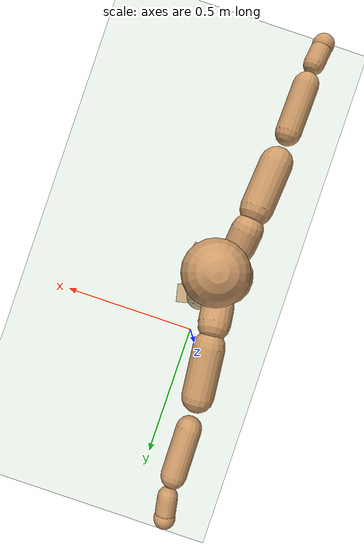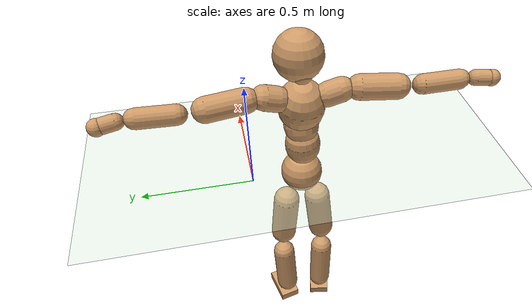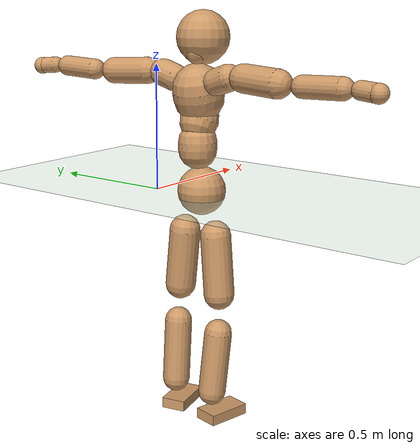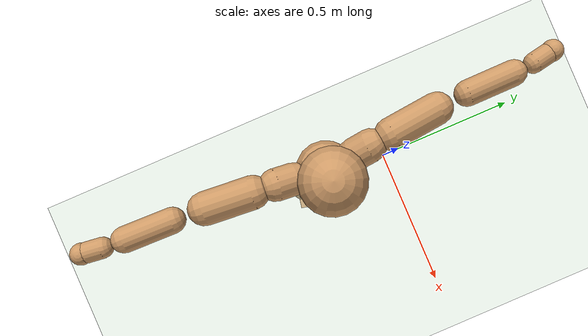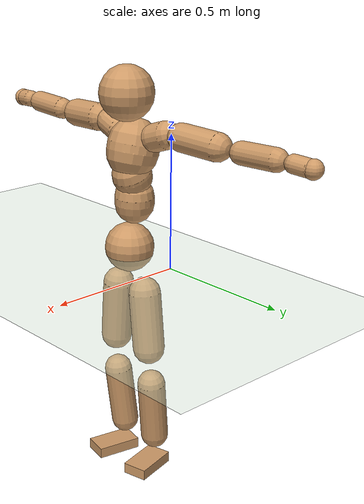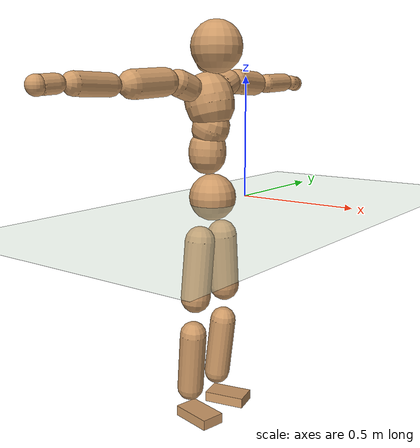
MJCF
<mujoco model="humanoid">
  <compiler coordinate="local"/>
  <default>
    <joint damping="0.0" armature="0.01" stiffness="0.0" limited="true"/>
    <geom conaffinity="1" condim="3" contype="7" margin="0.001" rgba="0.8 0.6 .4 1"/>
  </default>
  <asset>
    <texture type="skybox" builtin="gradient" rgb1=".4 .5 .6" rgb2="0 0 0" width="100" height="100"/>
    <texture builtin="flat" height="1278" mark="cross" markrgb="1 1 1" name="texgeom" random="0.01" rgb1="0.8 0.6 0.4" rgb2="0.8 0.6 0.4" type="cube" width="127"/>
    <texture builtin="checker" height="100" name="texplane" rgb1="0 0 0" rgb2="0.8 0.8 0.8" type="2d" width="100"/>
    <material name="MatPlane" reflectance="0.5" shininess="1" specular="1" texrepeat="60 60" texture="texplane"/>
    <material name="geom" texture="texgeom" texuniform="true"/>
  </asset>
  <worldbody>
    <light cutoff="100" diffuse="1 1 1" dir="-0 0 -1.3" directional="true" exponent="1" pos="0 0 1.3" specular=".1 .1 .1"/>
    <geom conaffinity="1" condim="3" name="floor" pos="0 0 0" rgba="0.8 0.9 0.8 1" size="100 100 .2" type="plane" material="MatPlane"/>
    <body name="Pelvis" pos="-0.002 -0.2274 0.0259">
      <freejoint name="Pelvis"/>
      <geom type="sphere" contype="1" conaffinity="1" density="500" size="0.0943" pos="0.0000 0.0000 0.0000" name="Pelvis"/>
      <body name="L_Hip" pos="-0.0079 0.0685 -0.0925">
        <joint name="L_Hip_x" type="hinge" pos="0 0 0" axis="1 0 0" stiffness="800" damping="80" armature="0.02" range="-180.0000 180.0000"/>
        <joint name="L_Hip_y" type="hinge" pos="0 0 0" axis="0 1 0" stiffness="800" damping="80" armature="0.02" range="-180.0000 180.0000"/>
        <joint name="L_Hip_z" type="hinge" pos="0 0 0" axis="0 0 1" stiffness="800" damping="80" armature="0.02" range="-180.0000 180.0000"/>
        <geom type="capsule" contype="1" conaffinity="1" density="500" fromto="-0.0008 0.0071 -0.0761 -0.0030 0.0284 -0.3044" size="0.0614" name="L_Hip"/>
        <body name="L_Knee" pos="-0.0038 0.0355 -0.3804">
          <joint name="L_Knee_x" type="hinge" pos="0 0 0" axis="1 0 0" stiffness="800" damping="80" armature="0.02" range="-180.0000 180.0000"/>
          <joint name="L_Knee_y" type="hinge" pos="0 0 0" axis="0 1 0" stiffness="800" damping="80" armature="0.02" range="-180.0000 180.0000"/>
          <joint name="L_Knee_z" type="hinge" pos="0 0 0" axis="0 0 1" stiffness="800" damping="80" armature="0.02" range="-180.0000 180.0000"/>
          <geom type="capsule" contype="1" conaffinity="1" density="500" fromto="-0.0087 -0.0029 -0.0807 -0.0349 -0.0114 -0.3229" size="0.0545" name="L_Knee"/>
          <body name="L_Ankle" pos="-0.0437 -0.0143 -0.4037">
            <joint name="L_Ankle_x" type="hinge" pos="0 0 0" axis="1 0 0" stiffness="800" damping="80" armature="0.02" range="-180.0000 180.0000"/>
            <joint name="L_Ankle_y" type="hinge" pos="0 0 0" axis="0 1 0" stiffness="800" damping="80" armature="0.02" range="-180.0000 180.0000"/>
            <joint name="L_Ankle_z" type="hinge" pos="0 0 0" axis="0 0 1" stiffness="800" damping="80" armature="0.02" range="-180.0000 180.0000"/>
            <geom type="box" contype="1" conaffinity="1" density="500" pos="0.0606 0.0137 -0.0282" size="0.0863 0.0492 0.0211" quat="0.9939 0.0000 0.0000 0.1106" name="L_Ankle"/>
            <body name="L_Toe" pos="0.1212 0.0273 -0.0564">
              <joint name="L_Toe_x" type="hinge" pos="0 0 0" axis="1 0 0" stiffness="500" damping="50" armature="0.02" range="-180.0000 180.0000"/>
              <joint name="L_Toe_y" type="hinge" pos="0 0 0" axis="0 1 0" stiffness="500" damping="50" armature="0.02" range="-180.0000 180.0000"/>
              <joint name="L_Toe_z" type="hinge" pos="0 0 0" axis="0 0 1" stiffness="500" damping="50" armature="0.02" range="-180.0000 180.0000"/>
              <geom type="box" contype="1" conaffinity="1" density="500" pos="0.0000 0.0000 0.0274" size="0.001 0.0024 0.001" quat="0.9932 0.0000 0.0000 0.1166" name="L_Toe"/>
            </body>
          </body>
        </body>
      </body>
      <body name="R_Hip" pos="-0.0056 -0.0667 -0.0915">
        <joint name="R_Hip_x" type="hinge" pos="0 0 0" axis="1 0 0" stiffness="800" damping="80" armature="0.02" range="-180.0000 180.0000"/>
        <joint name="R_Hip_y" type="hinge" pos="0 0 0" axis="0 1 0" stiffness="800" damping="80" armature="0.02" range="-180.0000 180.0000"/>
        <joint name="R_Hip_z" type="hinge" pos="0 0 0" axis="0 0 1" stiffness="800" damping="80" armature="0.02" range="-180.0000 180.0000"/>
        <geom type="capsule" contype="1" conaffinity="1" density="500" fromto="-0.0018 -0.0078 -0.0776 -0.0071 -0.0313 -0.3103" size="0.0604" name="R_Hip"/>
        <body name="R_Knee" pos="-0.0088 -0.0391 -0.3879">
          <joint name="R_Knee_x" type="hinge" pos="0 0 0" axis="1 0 0" stiffness="800" damping="80" armature="0.02" range="-180.0000 180.0000"/>
          <joint name="R_Knee_y" type="hinge" pos="0 0 0" axis="0 1 0" stiffness="800" damping="80" armature="0.02" range="-180.0000 180.0000"/>
          <joint name="R_Knee_z" type="hinge" pos="0 0 0" axis="0 0 1" stiffness="800" damping="80" armature="0.02" range="-180.0000 180.0000"/>
          <geom type="capsule" contype="1" conaffinity="1" density="500" fromto="-0.0085 0.0033 -0.0808 -0.0340 0.0131 -0.3231" size="0.0546" name="R_Knee"/>
          <body name="R_Ankle" pos="-0.0425 0.0164 -0.4039">
            <joint name="R_Ankle_x" type="hinge" pos="0 0 0" axis="1 0 0" stiffness="800" damping="80" armature="0.02" range="-180.0000 180.0000"/>
            <joint name="R_Ankle_y" type="hinge" pos="0 0 0" axis="0 1 0" stiffness="800" damping="80" armature="0.02" range="-180.0000 180.0000"/>
            <joint name="R_Ankle_z" type="hinge" pos="0 0 0" axis="0 0 1" stiffness="800" damping="80" armature="0.02" range="-180.0000 180.0000"/>
            <geom type="box" contype="1" conaffinity="1" density="500" pos="0.0628 -0.0131 -0.0243" size="0.0883 0.0492 0.0211" quat="0.9947 0.0000 0.0000 -0.1024" name="R_Ankle"/>
            <body name="R_Toe" pos="0.1257 -0.0261 -0.0486">
              <joint name="R_Toe_x" type="hinge" pos="0 0 0" axis="1 0 0" stiffness="500" damping="50" armature="0.02" range="-180.0000 180.0000"/>
              <joint name="R_Toe_y" type="hinge" pos="0 0 0" axis="0 1 0" stiffness="500" damping="50" armature="0.02" range="-180.0000 180.0000"/>
              <joint name="R_Toe_z" type="hinge" pos="0 0 0" axis="0 0 1" stiffness="500" damping="50" armature="0.02" range="-180.0000 180.0000"/>
              <geom type="box" contype="1" conaffinity="1" density="500" pos="0.0000 0.0000 0.0251" size="0.001 0.0024 0.0011" quat="0.9956 0.0000 0.0000 -0.0933" name="R_Toe"/>
            </body>
          </body>
        </body>
      </body>
      <body name="Torso" pos="-0.0264 -0.0026 0.1107">
        <joint name="Torso_x" type="hinge" pos="0 0 0" axis="1 0 0" stiffness="1000" damping="100" armature="0.02" range="-180.0000 180.0000"/>
        <joint name="Torso_y" type="hinge" pos="0 0 0" axis="0 1 0" stiffness="1000" damping="100" armature="0.02" range="-180.0000 180.0000"/>
        <joint name="Torso_z" type="hinge" pos="0 0 0" axis="0 0 1" stiffness="1000" damping="100" armature="0.02" range="-180.0000 180.0000"/>
        <geom type="capsule" contype="1" conaffinity="1" density="500" fromto="0.0016 0.0037 0.0833 0.0011 0.0025 0.0555" size="0.0753" name="Torso"/>
        <body name="Spine" pos="0.0027 0.0061 0.1389">
          <joint name="Spine_x" type="hinge" pos="0 0 0" axis="1 0 0" stiffness="1000" damping="100" armature="0.02" range="-180.0000 180.0000"/>
          <joint name="Spine_y" type="hinge" pos="0 0 0" axis="0 1 0" stiffness="1000" damping="100" armature="0.02" range="-180.0000 180.0000"/>
          <joint name="Spine_z" type="hinge" pos="0 0 0" axis="0 0 1" stiffness="1000" damping="100" armature="0.02" range="-180.0000 180.0000"/>
          <geom type="capsule" contype="1" conaffinity="1" density="500" fromto="0.0150 0.0007 0.0327 0.0100 0.0005 0.0218" size="0.0749" name="Spine"/>
          <body name="Chest" pos="0.025 0.0012 0.0544">
            <joint name="Chest_x" type="hinge" pos="0 0 0" axis="1 0 0" stiffness="1000" damping="100" armature="0.02" range="-180.0000 180.0000"/>
            <joint name="Chest_y" type="hinge" pos="0 0 0" axis="0 1 0" stiffness="1000" damping="100" armature="0.02" range="-180.0000 180.0000"/>
            <joint name="Chest_z" type="hinge" pos="0 0 0" axis="0 0 1" stiffness="1000" damping="100" armature="0.02" range="-180.0000 180.0000"/>
            <geom type="capsule" contype="1" conaffinity="1" density="500" fromto="-0.0220 -0.0012 0.0913 -0.0147 -0.0008 0.0609" size="0.0979" name="Chest"/>
            <body name="Neck" pos="-0.0389 -0.0027 0.215">
              <joint name="Neck_x" type="hinge" pos="0 0 0" axis="1 0 0" stiffness="500" damping="50" armature="0.02" range="-180.0000 180.0000"/>
              <joint name="Neck_y" type="hinge" pos="0 0 0" axis="0 1 0" stiffness="500" damping="50" armature="0.02" range="-180.0000 180.0000"/>
              <joint name="Neck_z" type="hinge" pos="0 0 0" axis="0 0 1" stiffness="500" damping="50" armature="0.02" range="-180.0000 180.0000"/>
              <geom type="capsule" contype="1" conaffinity="1" density="500" fromto="0.0106 0.0011 0.0134 0.0424 0.0046 0.0537" size="0.0441" name="Neck"/>
              <body name="Head" pos="0.053 0.0057 0.0672">
                <joint name="Head_x" type="hinge" pos="0 0 0" axis="1 0 0" stiffness="500" damping="50" armature="0.02" range="-180.0000 180.0000"/>
                <joint name="Head_y" type="hinge" pos="0 0 0" axis="0 1 0" stiffness="500" damping="50" armature="0.02" range="-180.0000 180.0000"/>
                <joint name="Head_z" type="hinge" pos="0 0 0" axis="0 0 1" stiffness="500" damping="50" armature="0.02" range="-180.0000 180.0000"/>
                <geom type="sphere" contype="1" conaffinity="1" density="500" size="0.1021" pos="0.0000 0.0000 0.0000" name="Head"/>
              </body>
            </body>
            <body name="L_Thorax" pos="-0.0335 0.0788 0.1223">
              <joint name="L_Thorax_x" type="hinge" pos="0 0 0" axis="1 0 0" stiffness="500" damping="50" armature="0.02" range="-180.0000 180.0000"/>
              <joint name="L_Thorax_y" type="hinge" pos="0 0 0" axis="0 1 0" stiffness="500" damping="50" armature="0.02" range="-180.0000 180.0000"/>
              <joint name="L_Thorax_z" type="hinge" pos="0 0 0" axis="0 0 1" stiffness="500" damping="50" armature="0.02" range="-180.0000 180.0000"/>
              <geom type="capsule" contype="1" conaffinity="1" density="500" fromto="-0.0018 0.0182 0.0060 -0.0072 0.0730 0.0242" size="0.0523" name="L_Thorax"/>
              <body name="L_Shoulder" pos="-0.009 0.0912 0.0302">
                <joint name="L_Shoulder_x" type="hinge" pos="0 0 0" axis="1 0 0" stiffness="500" damping="50" armature="0.02" range="-720.0000 720.0000"/>
                <joint name="L_Shoulder_y" type="hinge" pos="0 0 0" axis="0 1 0" stiffness="500" damping="50" armature="0.02" range="-720.0000 720.0000"/>
                <joint name="L_Shoulder_z" type="hinge" pos="0 0 0" axis="0 0 1" stiffness="500" damping="50" armature="0.02" range="-720.0000 720.0000"/>
                <geom type="capsule" contype="1" conaffinity="1" density="500" fromto="-0.0055 0.0529 -0.0027 -0.0220 0.2114 -0.0109" size="0.0517" name="L_Shoulder"/>
                <body name="L_Elbow" pos="-0.0275 0.2643 -0.0136">
                  <joint name="L_Elbow_x" type="hinge" pos="0 0 0" axis="1 0 0" stiffness="500" damping="50" armature="0.02" range="-720.0000 720.0000"/>
                  <joint name="L_Elbow_y" type="hinge" pos="0 0 0" axis="0 1 0" stiffness="500" damping="50" armature="0.02" range="-720.0000 720.0000"/>
                  <joint name="L_Elbow_z" type="hinge" pos="0 0 0" axis="0 0 1" stiffness="500" damping="50" armature="0.02" range="-720.0000 720.0000"/>
                  <geom type="capsule" contype="1" conaffinity="1" density="500" fromto="-0.0004 0.0508 0.0018 -0.0014 0.2032 0.0073" size="0.0408" name="L_Elbow"/>
                  <body name="L_Wrist" pos="-0.0018 0.254 0.0091">
                    <joint name="L_Wrist_x" type="hinge" pos="0 0 0" axis="1 0 0" stiffness="300" damping="30" armature="0.02" range="-180.0000 180.0000"/>
                    <joint name="L_Wrist_y" type="hinge" pos="0 0 0" axis="0 1 0" stiffness="300" damping="30" armature="0.02" range="-180.0000 180.0000"/>
                    <joint name="L_Wrist_z" type="hinge" pos="0 0 0" axis="0 0 1" stiffness="300" damping="30" armature="0.02" range="-180.0000 180.0000"/>
                    <geom type="capsule" contype="1" conaffinity="1" density="500" fromto="-0.0031 0.0172 -0.0016 -0.0124 0.0686 -0.0063" size="0.0324" name="L_Wrist"/>
                    <body name="L_Hand" pos="-0.0155 0.0858 -0.0079">
                      <joint name="L_Hand_x" type="hinge" pos="0 0 0" axis="1 0 0" stiffness="300" damping="30" armature="0.02" range="-180.0000 180.0000"/>
                      <joint name="L_Hand_y" type="hinge" pos="0 0 0" axis="0 1 0" stiffness="300" damping="30" armature="0.02" range="-180.0000 180.0000"/>
                      <joint name="L_Hand_z" type="hinge" pos="0 0 0" axis="0 0 1" stiffness="300" damping="30" armature="0.02" range="-180.0000 180.0000"/>
                      <geom type="sphere" contype="1" conaffinity="1" density="500" size="0.0343" pos="0.0000 0.0000 0.0000" name="L_Hand"/>
                    </body>
                  </body>
                </body>
              </body>
            </body>
            <body name="R_Thorax" pos="-0.0378 -0.0819 0.1191">
              <joint name="R_Thorax_x" type="hinge" pos="0 0 0" axis="1 0 0" stiffness="500" damping="50" armature="0.02" range="-180.0000 180.0000"/>
              <joint name="R_Thorax_y" type="hinge" pos="0 0 0" axis="0 1 0" stiffness="500" damping="50" armature="0.02" range="-180.0000 180.0000"/>
              <joint name="R_Thorax_z" type="hinge" pos="0 0 0" axis="0 0 1" stiffness="500" damping="50" armature="0.02" range="-180.0000 180.0000"/>
              <geom type="capsule" contype="1" conaffinity="1" density="500" fromto="-0.0017 -0.0194 0.0065 -0.0068 -0.0776 0.0259" size="0.0514" name="R_Thorax"/>
              <body name="R_Shoulder" pos="-0.0085 -0.097 0.0324">
                <joint name="R_Shoulder_x" type="hinge" pos="0 0 0" axis="1 0 0" stiffness="500" damping="50" armature="0.02" range="-720.0000 720.0000"/>
                <joint name="R_Shoulder_y" type="hinge" pos="0 0 0" axis="0 1 0" stiffness="500" damping="50" armature="0.02" range="-720.0000 720.0000"/>
                <joint name="R_Shoulder_z" type="hinge" pos="0 0 0" axis="0 0 1" stiffness="500" damping="50" armature="0.02" range="-720.0000 720.0000"/>
                <geom type="capsule" contype="1" conaffinity="1" density="500" fromto="-0.0044 -0.0516 -0.0028 -0.0174 -0.2065 -0.0112" size="0.0532" name="R_Shoulder"/>
                <body name="R_Elbow" pos="-0.0218 -0.2581 -0.014">
                  <joint name="R_Elbow_x" type="hinge" pos="0 0 0" axis="1 0 0" stiffness="500" damping="50" armature="0.02" range="-720.0000 720.0000"/>
                  <joint name="R_Elbow_y" type="hinge" pos="0 0 0" axis="0 1 0" stiffness="500" damping="50" armature="0.02" range="-720.0000 720.0000"/>
                  <joint name="R_Elbow_z" type="hinge" pos="0 0 0" axis="0 0 1" stiffness="500" damping="50" armature="0.02" range="-720.0000 720.0000"/>
                  <geom type="capsule" contype="1" conaffinity="1" density="500" fromto="-0.0013 -0.0521 0.0016 -0.0051 -0.2085 0.0063" size="0.0413" name="R_Elbow"/>
                  <body name="R_Wrist" pos="-0.0064 -0.2606 0.0079">
                    <joint name="R_Wrist_x" type="hinge" pos="0 0 0" axis="1 0 0" stiffness="300" damping="30" armature="0.02" range="-180.0000 180.0000"/>
                    <joint name="R_Wrist_y" type="hinge" pos="0 0 0" axis="0 1 0" stiffness="300" damping="30" armature="0.02" range="-180.0000 180.0000"/>
                    <joint name="R_Wrist_z" type="hinge" pos="0 0 0" axis="0 0 1" stiffness="300" damping="30" armature="0.02" range="-180.0000 180.0000"/>
                    <geom type="capsule" contype="1" conaffinity="1" density="500" fromto="-0.0021 -0.0173 -0.0012 -0.0083 -0.0692 -0.0047" size="0.0333" name="R_Wrist"/>
                    <body name="R_Hand" pos="-0.0104 -0.0865 -0.0059">
                      <joint name="R_Hand_x" type="hinge" pos="0 0 0" axis="1 0 0" stiffness="300" damping="30" armature="0.02" range="-180.0000 180.0000"/>
                      <joint name="R_Hand_y" type="hinge" pos="0 0 0" axis="0 1 0" stiffness="300" damping="30" armature="0.02" range="-180.0000 180.0000"/>
                      <joint name="R_Hand_z" type="hinge" pos="0 0 0" axis="0 0 1" stiffness="300" damping="30" armature="0.02" range="-180.0000 180.0000"/>
                      <geom type="sphere" contype="1" conaffinity="1" density="500" size="0.0347" pos="0.0000 0.0000 0.0000" name="R_Hand"/>
                    </body>
                  </body>
                </body>
              </body>
            </body>
          </body>
        </body>
      </body>
    </body>
  </worldbody>
  <actuator>
    <motor name="L_Hip_x" joint="L_Hip_x" gear="500"/>
    <motor name="L_Hip_y" joint="L_Hip_y" gear="500"/>
    <motor name="L_Hip_z" joint="L_Hip_z" gear="500"/>
    <motor name="L_Knee_x" joint="L_Knee_x" gear="500"/>
    <motor name="L_Knee_y" joint="L_Knee_y" gear="500"/>
    <motor name="L_Knee_z" joint="L_Knee_z" gear="500"/>
    <motor name="L_Ankle_x" joint="L_Ankle_x" gear="500"/>
    <motor name="L_Ankle_y" joint="L_Ankle_y" gear="500"/>
    <motor name="L_Ankle_z" joint="L_Ankle_z" gear="500"/>
    <motor name="L_Toe_x" joint="L_Toe_x" gear="500"/>
    <motor name="L_Toe_y" joint="L_Toe_y" gear="500"/>
    <motor name="L_Toe_z" joint="L_Toe_z" gear="500"/>
    <motor name="R_Hip_x" joint="R_Hip_x" gear="500"/>
    <motor name="R_Hip_y" joint="R_Hip_y" gear="500"/>
    <motor name="R_Hip_z" joint="R_Hip_z" gear="500"/>
    <motor name="R_Knee_x" joint="R_Knee_x" gear="500"/>
    <motor name="R_Knee_y" joint="R_Knee_y" gear="500"/>
    <motor name="R_Knee_z" joint="R_Knee_z" gear="500"/>
    <motor name="R_Ankle_x" joint="R_Ankle_x" gear="500"/>
    <motor name="R_Ankle_y" joint="R_Ankle_y" gear="500"/>
    <motor name="R_Ankle_z" joint="R_Ankle_z" gear="500"/>
    <motor name="R_Toe_x" joint="R_Toe_x" gear="500"/>
    <motor name="R_Toe_y" joint="R_Toe_y" gear="500"/>
    <motor name="R_Toe_z" joint="R_Toe_z" gear="500"/>
    <motor name="Torso_x" joint="Torso_x" gear="500"/>
    <motor name="Torso_y" joint="Torso_y" gear="500"/>
    <motor name="Torso_z" joint="Torso_z" gear="500"/>
    <motor name="Spine_x" joint="Spine_x" gear="500"/>
    <motor name="Spine_y" joint="Spine_y" gear="500"/>
    <motor name="Spine_z" joint="Spine_z" gear="500"/>
    <motor name="Chest_x" joint="Chest_x" gear="500"/>
    <motor name="Chest_y" joint="Chest_y" gear="500"/>
    <motor name="Chest_z" joint="Chest_z" gear="500"/>
    <motor name="Neck_x" joint="Neck_x" gear="500"/>
    <motor name="Neck_y" joint="Neck_y" gear="500"/>
    <motor name="Neck_z" joint="Neck_z" gear="500"/>
    <motor name="Head_x" joint="Head_x" gear="500"/>
    <motor name="Head_y" joint="Head_y" gear="500"/>
    <motor name="Head_z" joint="Head_z" gear="500"/>
    <motor name="L_Thorax_x" joint="L_Thorax_x" gear="500"/>
    <motor name="L_Thorax_y" joint="L_Thorax_y" gear="500"/>
    <motor name="L_Thorax_z" joint="L_Thorax_z" gear="500"/>
    <motor name="L_Shoulder_x" joint="L_Shoulder_x" gear="500"/>
    <motor name="L_Shoulder_y" joint="L_Shoulder_y" gear="500"/>
    <motor name="L_Shoulder_z" joint="L_Shoulder_z" gear="500"/>
    <motor name="L_Elbow_x" joint="L_Elbow_x" gear="500"/>
    <motor name="L_Elbow_y" joint="L_Elbow_y" gear="500"/>
    <motor name="L_Elbow_z" joint="L_Elbow_z" gear="500"/>
    <motor name="L_Wrist_x" joint="L_Wrist_x" gear="500"/>
    <motor name="L_Wrist_y" joint="L_Wrist_y" gear="500"/>
    <motor name="L_Wrist_z" joint="L_Wrist_z" gear="500"/>
    <motor name="L_Hand_x" joint="L_Hand_x" gear="500"/>
    <motor name="L_Hand_y" joint="L_Hand_y" gear="500"/>
    <motor name="L_Hand_z" joint="L_Hand_z" gear="500"/>
    <motor name="R_Thorax_x" joint="R_Thorax_x" gear="500"/>
    <motor name="R_Thorax_y" joint="R_Thorax_y" gear="500"/>
    <motor name="R_Thorax_z" joint="R_Thorax_z" gear="500"/>
    <motor name="R_Shoulder_x" joint="R_Shoulder_x" gear="500"/>
    <motor name="R_Shoulder_y" joint="R_Shoulder_y" gear="500"/>
    <motor name="R_Shoulder_z" joint="R_Shoulder_z" gear="500"/>
    <motor name="R_Elbow_x" joint="R_Elbow_x" gear="500"/>
    <motor name="R_Elbow_y" joint="R_Elbow_y" gear="500"/>
    <motor name="R_Elbow_z" joint="R_Elbow_z" gear="500"/>
    <motor name="R_Wrist_x" joint="R_Wrist_x" gear="500"/>
    <motor name="R_Wrist_y" joint="R_Wrist_y" gear="500"/>
    <motor name="R_Wrist_z" joint="R_Wrist_z" gear="500"/>
    <motor name="R_Hand_x" joint="R_Hand_x" gear="500"/>
    <motor name="R_Hand_y" joint="R_Hand_y" gear="500"/>
    <motor name="R_Hand_z" joint="R_Hand_z" gear="500"/>
  </actuator>
  <contact>
    <exclude body1="Torso" body2="Chest"/>
    <exclude body1="Head" body2="Chest"/>
    <exclude body1="R_Knee" body2="R_Toe"/>
    <exclude body1="R_Knee" body2="L_Ankle"/>
    <exclude body1="R_Knee" body2="L_Toe"/>
    <exclude body1="L_Knee" body2="L_Toe"/>
    <exclude body1="L_Knee" body2="R_Ankle"/>
    <exclude body1="L_Knee" body2="R_Toe"/>
    <exclude body1="L_Shoulder" body2="Chest"/>
    <exclude body1="R_Shoulder" body2="Chest"/>
  </contact>
  <sensor/>
  <size njmax="700" nconmax="700"/>
</mujoco>
